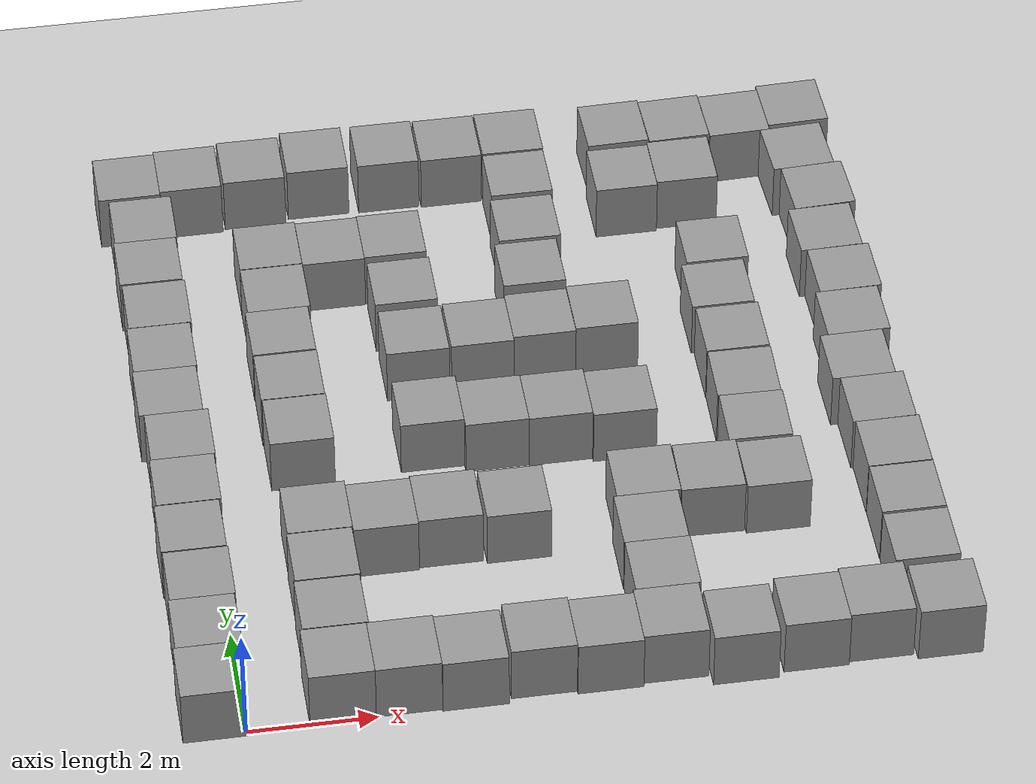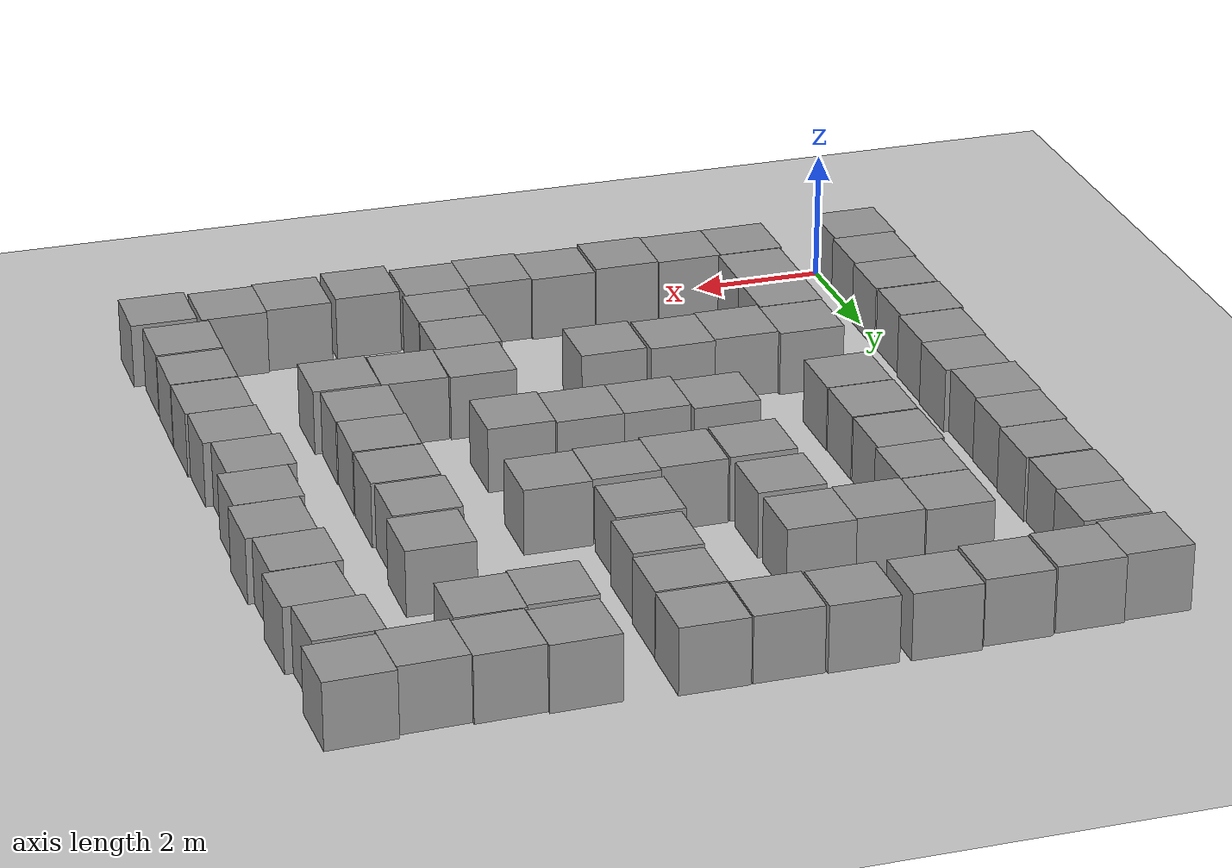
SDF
<sdf version="1.7">
 <world name="default">
  <light name="sun" type="directional">
   <pose>0 0 10 0 -0 0</pose>
   <diffuse>0.8 0.8 0.8 1</diffuse>
   <specular>0.2 0.2 0.2 1</specular>
   <attenuation>
    <range>1000</range>
    <constant>0.9</constant>
    <linear>0.01</linear>
    <quadratic>0.001</quadratic>
   </attenuation>
   <direction>-0.5 0.1 -0.9</direction>
   <spot><inner_angle>0</inner_angle><outer_angle>0</outer_angle><falloff>0</falloff></spot>
  </light>
  <model name="ground_plane">
   <static>1</static>
   <link name="link">
    <collision name="collision">
     <geometry><plane><normal>0 0 1</normal><size>100 100</size></plane></geometry>
     <surface>
      <contact><collide_bitmask>65535</collide_bitmask></contact>
      <friction><ode><mu>100</mu><mu2>50</mu2></ode></friction>
     </surface>
    </collision>
    <visual name="visual">
     <cast_shadows>0</cast_shadows>
     <geometry><plane><normal>0 0 1</normal><size>100 100</size></plane></geometry>
     <material>
      <script><uri>file://media/materials/scripts/gazebo.material</uri><name>Gazebo/Grey</name></script>
     </material>
    </visual>
   </link>
  </model>
  <gravity>0 0 -9.8</gravity>
  <magnetic_field>6e-06 2.3e-05 -4.2e-05</magnetic_field>
  <atmosphere type="adiabatic"/>
  <physics type="ode">
   <max_step_size>0.001</max_step_size>
   <real_time_factor>1</real_time_factor>
   <real_time_update_rate>1000</real_time_update_rate>
  </physics>
  <scene><ambient>0.4 0.4 0.4 1</ambient><background>0.7 0.7 0.7 1</background><shadows>1</shadows></scene>
  <audio><device>default</device></audio>
  <spherical_coordinates>
   <surface_model>EARTH_WGS84</surface_model>
   <latitude_deg>0</latitude_deg>
   <longitude_deg>0</longitude_deg>
   <elevation>0</elevation>
   <heading_deg>0</heading_deg>
  </spherical_coordinates>
  <model name="unit_box">
   <pose>-0.452482 0.421147 0.499995 -1e-05 -0 -0.000161</pose>
   <link name="link">
    <inertial>
     <mass>1</mass>
     <inertia>
      <ixx>0.166667</ixx>
      <ixy>0</ixy>
      <ixz>0</ixz>
      <iyy>0.166667</iyy>
      <iyz>0</iyz>
      <izz>0.166667</izz>
     </inertia>
    </inertial>
    <collision name="collision"><geometry><box><size>1 1 1</size></box></geometry></collision>
    <visual name="visual">
     <geometry><box><size>1 1 1</size></box></geometry>
     <material>
      <script><name>Gazebo/Grey</name><uri>file://media/materials/scripts/gazebo.material</uri></script>
     </material>
    </visual>
   </link>
  </model>
  <model name="unit_box_clone">
   <pose>-0.416464 1.42149 0.499995 0 1e-05 -0.00087</pose>
   <link name="link">
    <inertial>
     <mass>1</mass>
     <inertia>
      <ixx>0.166667</ixx>
      <ixy>0</ixy>
      <ixz>0</ixz>
      <iyy>0.166667</iyy>
      <iyz>0</iyz>
      <izz>0.166667</izz>
     </inertia>
    </inertial>
    <collision name="collision"><geometry><box><size>1 1 1</size></box></geometry></collision>
    <visual name="visual">
     <geometry><box><size>1 1 1</size></box></geometry>
     <material>
      <script><name>Gazebo/Grey</name><uri>file://media/materials/scripts/gazebo.material</uri></script>
     </material>
    </visual>
   </link>
  </model>
  <model name="unit_box_clone_0">
   <pose>-0.394844 2.42159 0.499995 1e-05 0 -0.000969</pose>
   <link name="link">
    <inertial>
     <mass>1</mass>
     <inertia>
      <ixx>0.166667</ixx>
      <ixy>0</ixy>
      <ixz>0</ixz>
      <iyy>0.166667</iyy>
      <iyz>0</iyz>
      <izz>0.166667</izz>
     </inertia>
    </inertial>
    <collision name="collision"><geometry><box><size>1 1 1</size></box></geometry></collision>
    <visual name="visual">
     <geometry><box><size>1 1 1</size></box></geometry>
     <material>
      <script><name>Gazebo/Grey</name><uri>file://media/materials/scripts/gazebo.material</uri></script>
     </material>
    </visual>
   </link>
  </model>
  <model name="unit_box_clone_1">
   <pose>-0.412073 3.43962 0.499995 -1e-05 -0 -0.000161</pose>
   <link name="link">
    <inertial>
     <mass>1</mass>
     <inertia>
      <ixx>0.166667</ixx>
      <ixy>0</ixy>
      <ixz>0</ixz>
      <iyy>0.166667</iyy>
      <iyz>0</iyz>
      <izz>0.166667</izz>
     </inertia>
    </inertial>
    <collision name="collision"><geometry><box><size>1 1 1</size></box></geometry></collision>
    <visual name="visual">
     <geometry><box><size>1 1 1</size></box></geometry>
     <material>
      <script><name>Gazebo/Grey</name><uri>file://media/materials/scripts/gazebo.material</uri></script>
     </material>
    </visual>
   </link>
  </model>
  <model name="unit_box_clone_2">
   <pose>-0.375795 4.44922 0.499995 0 -1e-05 -7e-06</pose>
   <link name="link">
    <inertial>
     <mass>1</mass>
     <inertia>
      <ixx>0.166667</ixx>
      <ixy>0</ixy>
      <ixz>0</ixz>
      <iyy>0.166667</iyy>
      <iyz>0</iyz>
      <izz>0.166667</izz>
     </inertia>
    </inertial>
    <collision name="collision"><geometry><box><size>1 1 1</size></box></geometry></collision>
    <visual name="visual">
     <geometry><box><size>1 1 1</size></box></geometry>
     <material>
      <script><name>Gazebo/Grey</name><uri>file://media/materials/scripts/gazebo.material</uri></script>
     </material>
    </visual>
   </link>
  </model>
  <model name="unit_box_clone_3">
   <pose>-0.353201 5.44926 0.499995 -1e-05 -0 2e-06</pose>
   <link name="link">
    <inertial>
     <mass>1</mass>
     <inertia>
      <ixx>0.166667</ixx>
      <ixy>0</ixy>
      <ixz>0</ixz>
      <iyy>0.166667</iyy>
      <iyz>0</iyz>
      <izz>0.166667</izz>
     </inertia>
    </inertial>
    <collision name="collision"><geometry><box><size>1 1 1</size></box></geometry></collision>
    <visual name="visual">
     <geometry><box><size>1 1 1</size></box></geometry>
     <material>
      <script><name>Gazebo/Grey</name><uri>file://media/materials/scripts/gazebo.material</uri></script>
     </material>
    </visual>
   </link>
  </model>
  <model name="unit_box_clone_4">
   <pose>1.45759 0.504589 0.5 0 0 -0.001251</pose>
   <link name="link">
    <inertial>
     <mass>1</mass>
     <inertia>
      <ixx>0.166667</ixx>
      <ixy>0</ixy>
      <ixz>0</ixz>
      <iyy>0.166667</iyy>
      <iyz>0</iyz>
      <izz>0.166667</izz>
     </inertia>
    </inertial>
    <collision name="collision"><geometry><box><size>1 1 1</size></box></geometry></collision>
    <visual name="visual">
     <geometry><box><size>1 1 1</size></box></geometry>
     <material>
      <script><name>Gazebo/Grey</name><uri>file://media/materials/scripts/gazebo.material</uri></script>
     </material>
    </visual>
   </link>
  </model>
  <model name="unit_box_clone_5">
   <pose>1.49382 1.51707 0.499995 1e-05 -0 -0.000161</pose>
   <link name="link">
    <inertial>
     <mass>1</mass>
     <inertia>
      <ixx>0.166667</ixx>
      <ixy>0</ixy>
      <ixz>0</ixz>
      <iyy>0.166667</iyy>
      <iyz>0</iyz>
      <izz>0.166667</izz>
     </inertia>
    </inertial>
    <collision name="collision"><geometry><box><size>1 1 1</size></box></geometry></collision>
    <visual name="visual">
     <geometry><box><size>1 1 1</size></box></geometry>
     <material>
      <script><name>Gazebo/Grey</name><uri>file://media/materials/scripts/gazebo.material</uri></script>
     </material>
    </visual>
   </link>
  </model>
  <model name="unit_box_clone_6">
   <pose>1.51175 2.53296 0.499995 0 -1e-05 -0.000161</pose>
   <link name="link">
    <inertial>
     <mass>1</mass>
     <inertia>
      <ixx>0.166667</ixx>
      <ixy>0</ixy>
      <ixz>0</ixz>
      <iyy>0.166667</iyy>
      <iyz>0</iyz>
      <izz>0.166667</izz>
     </inertia>
    </inertial>
    <collision name="collision"><geometry><box><size>1 1 1</size></box></geometry></collision>
    <visual name="visual">
     <geometry><box><size>1 1 1</size></box></geometry>
     <material>
      <script><name>Gazebo/Grey</name><uri>file://media/materials/scripts/gazebo.material</uri></script>
     </material>
    </visual>
   </link>
  </model>
  <model name="unit_box_clone_7">
   <pose>1.5258 3.54121 0.499995 0 -9e-06 -0.002041</pose>
   <link name="link">
    <inertial>
     <mass>1</mass>
     <inertia>
      <ixx>0.166667</ixx>
      <ixy>0</ixy>
      <ixz>0</ixz>
      <iyy>0.166667</iyy>
      <iyz>0</iyz>
      <izz>0.166667</izz>
     </inertia>
    </inertial>
    <collision name="collision"><geometry><box><size>1 1 1</size></box></geometry></collision>
    <visual name="visual">
     <geometry><box><size>1 1 1</size></box></geometry>
     <material>
      <script><name>Gazebo/Grey</name><uri>file://media/materials/scripts/gazebo.material</uri></script>
     </material>
    </visual>
   </link>
  </model>
  <model name="unit_box_clone_8">
   <pose>-0.432042 6.44927 0.499995 9e-06 -0 -8e-06</pose>
   <link name="link">
    <inertial>
     <mass>1</mass>
     <inertia>
      <ixx>0.166667</ixx>
      <ixy>0</ixy>
      <ixz>0</ixz>
      <iyy>0.166667</iyy>
      <iyz>0</iyz>
      <izz>0.166667</izz>
     </inertia>
    </inertial>
    <collision name="collision"><geometry><box><size>1 1 1</size></box></geometry></collision>
    <visual name="visual">
     <geometry><box><size>1 1 1</size></box></geometry>
     <material>
      <script><name>Gazebo/Grey</name><uri>file://media/materials/scripts/gazebo.material</uri></script>
     </material>
    </visual>
   </link>
  </model>
  <model name="unit_box_clone_9">
   <pose>-0.415056 7.44933 0.499995 -1e-05 -0 -0.000103</pose>
   <link name="link">
    <inertial>
     <mass>1</mass>
     <inertia>
      <ixx>0.166667</ixx>
      <ixy>0</ixy>
      <ixz>0</ixz>
      <iyy>0.166667</iyy>
      <iyz>0</iyz>
      <izz>0.166667</izz>
     </inertia>
    </inertial>
    <collision name="collision"><geometry><box><size>1 1 1</size></box></geometry></collision>
    <visual name="visual">
     <geometry><box><size>1 1 1</size></box></geometry>
     <material>
      <script><name>Gazebo/Grey</name><uri>file://media/materials/scripts/gazebo.material</uri></script>
     </material>
    </visual>
   </link>
  </model>
  <model name="unit_box_clone_10">
   <pose>-0.38869 8.45349 0.499995 0 1e-05 -0.000161</pose>
   <link name="link">
    <inertial>
     <mass>1</mass>
     <inertia>
      <ixx>0.166667</ixx>
      <ixy>0</ixy>
      <ixz>0</ixz>
      <iyy>0.166667</iyy>
      <iyz>0</iyz>
      <izz>0.166667</izz>
     </inertia>
    </inertial>
    <collision name="collision"><geometry><box><size>1 1 1</size></box></geometry></collision>
    <visual name="visual">
     <geometry><box><size>1 1 1</size></box></geometry>
     <material>
      <script><name>Gazebo/Grey</name><uri>file://media/materials/scripts/gazebo.material</uri></script>
     </material>
    </visual>
   </link>
  </model>
  <model name="unit_box_clone_11">
   <pose>1.49548 5.50133 0.499995 -1e-05 -0 -0.000161</pose>
   <link name="link">
    <inertial>
     <mass>1</mass>
     <inertia>
      <ixx>0.166667</ixx>
      <ixy>0</ixy>
      <ixz>0</ixz>
      <iyy>0.166667</iyy>
      <iyz>0</iyz>
      <izz>0.166667</izz>
     </inertia>
    </inertial>
    <collision name="collision"><geometry><box><size>1 1 1</size></box></geometry></collision>
    <visual name="visual">
     <geometry><box><size>1 1 1</size></box></geometry>
     <material>
      <script><name>Gazebo/Grey</name><uri>file://media/materials/scripts/gazebo.material</uri></script>
     </material>
    </visual>
   </link>
  </model>
  <model name="unit_box_clone_12">
   <pose>1.48213 6.51055 0.499995 0 -1e-05 -0.000161</pose>
   <link name="link">
    <inertial>
     <mass>1</mass>
     <inertia>
      <ixx>0.166667</ixx>
      <ixy>0</ixy>
      <ixz>0</ixz>
      <iyy>0.166667</iyy>
      <iyz>0</iyz>
      <izz>0.166667</izz>
     </inertia>
    </inertial>
    <collision name="collision"><geometry><box><size>1 1 1</size></box></geometry></collision>
    <visual name="visual">
     <geometry><box><size>1 1 1</size></box></geometry>
     <material>
      <script><name>Gazebo/Grey</name><uri>file://media/materials/scripts/gazebo.material</uri></script>
     </material>
    </visual>
   </link>
  </model>
  <model name="unit_box_clone_13">
   <pose>1.47399 7.5353 0.499995 -1e-05 0 0.003564</pose>
   <link name="link">
    <inertial>
     <mass>1</mass>
     <inertia>
      <ixx>0.166667</ixx>
      <ixy>0</ixy>
      <ixz>0</ixz>
      <iyy>0.166667</iyy>
      <iyz>0</iyz>
      <izz>0.166667</izz>
     </inertia>
    </inertial>
    <collision name="collision"><geometry><box><size>1 1 1</size></box></geometry></collision>
    <visual name="visual">
     <geometry><box><size>1 1 1</size></box></geometry>
     <material>
      <script><name>Gazebo/Grey</name><uri>file://media/materials/scripts/gazebo.material</uri></script>
     </material>
    </visual>
   </link>
  </model>
  <model name="unit_box_clone_14">
   <pose>1.51143 8.53594 0.499995 -0 -1e-05 0.004544</pose>
   <link name="link">
    <inertial>
     <mass>1</mass>
     <inertia>
      <ixx>0.166667</ixx>
      <ixy>0</ixy>
      <ixz>0</ixz>
      <iyy>0.166667</iyy>
      <iyz>0</iyz>
      <izz>0.166667</izz>
     </inertia>
    </inertial>
    <collision name="collision"><geometry><box><size>1 1 1</size></box></geometry></collision>
    <visual name="visual">
     <geometry><box><size>1 1 1</size></box></geometry>
     <material>
      <script><name>Gazebo/Grey</name><uri>file://media/materials/scripts/gazebo.material</uri></script>
     </material>
    </visual>
   </link>
  </model>
  <model name="unit_box_clone_15">
   <pose>1.50842 9.54393 0.499995 -1e-05 -0 0.001021</pose>
   <link name="link">
    <inertial>
     <mass>1</mass>
     <inertia>
      <ixx>0.166667</ixx>
      <ixy>0</ixy>
      <ixz>0</ixz>
      <iyy>0.166667</iyy>
      <iyz>0</iyz>
      <izz>0.166667</izz>
     </inertia>
    </inertial>
    <collision name="collision"><geometry><box><size>1 1 1</size></box></geometry></collision>
    <visual name="visual">
     <geometry><box><size>1 1 1</size></box></geometry>
     <material>
      <script><name>Gazebo/Grey</name><uri>file://media/materials/scripts/gazebo.material</uri></script>
     </material>
    </visual>
   </link>
  </model>
  <model name="unit_box_clone_16">
   <pose>-0.419297 9.47967 0.499995 -1e-05 0 -0.000337</pose>
   <link name="link">
    <inertial>
     <mass>1</mass>
     <inertia>
      <ixx>0.166667</ixx>
      <ixy>0</ixy>
      <ixz>0</ixz>
      <iyy>0.166667</iyy>
      <iyz>0</iyz>
      <izz>0.166667</izz>
     </inertia>
    </inertial>
    <collision name="collision"><geometry><box><size>1 1 1</size></box></geometry></collision>
    <visual name="visual">
     <geometry><box><size>1 1 1</size></box></geometry>
     <material>
      <script><name>Gazebo/Grey</name><uri>file://media/materials/scripts/gazebo.material</uri></script>
     </material>
    </visual>
   </link>
  </model>
  <model name="unit_box_clone_17">
   <pose>-0.397226 10.4797 0.499995 1e-05 0 -0.000329</pose>
   <link name="link">
    <inertial>
     <mass>1</mass>
     <inertia>
      <ixx>0.166667</ixx>
      <ixy>0</ixy>
      <ixz>0</ixz>
      <iyy>0.166667</iyy>
      <iyz>0</iyz>
      <izz>0.166667</izz>
     </inertia>
    </inertial>
    <collision name="collision"><geometry><box><size>1 1 1</size></box></geometry></collision>
    <visual name="visual">
     <geometry><box><size>1 1 1</size></box></geometry>
     <material>
      <script><name>Gazebo/Grey</name><uri>file://media/materials/scripts/gazebo.material</uri></script>
     </material>
    </visual>
   </link>
  </model>
  <model name="unit_box_clone_18">
   <pose>-0.559015 11.533 0.499995 1e-05 -0 0.004638</pose>
   <link name="link">
    <inertial>
     <mass>1</mass>
     <inertia>
      <ixx>0.166667</ixx>
      <ixy>0</ixy>
      <ixz>0</ixz>
      <iyy>0.166667</iyy>
      <iyz>0</iyz>
      <izz>0.166667</izz>
     </inertia>
    </inertial>
    <collision name="collision"><geometry><box><size>1 1 1</size></box></geometry></collision>
    <visual name="visual">
     <geometry><box><size>1 1 1</size></box></geometry>
     <material>
      <script><name>Gazebo/Grey</name><uri>file://media/materials/scripts/gazebo.material</uri></script>
     </material>
    </visual>
   </link>
  </model>
  <model name="unit_box_clone_19">
   <pose>0.440722 11.5938 0.499995 -1e-05 -0 0.004635</pose>
   <link name="link">
    <inertial>
     <mass>1</mass>
     <inertia>
      <ixx>0.166667</ixx>
      <ixy>0</ixy>
      <ixz>0</ixz>
      <iyy>0.166667</iyy>
      <iyz>0</iyz>
      <izz>0.166667</izz>
     </inertia>
    </inertial>
    <collision name="collision"><geometry><box><size>1 1 1</size></box></geometry></collision>
    <visual name="visual">
     <geometry><box><size>1 1 1</size></box></geometry>
     <material>
      <script><name>Gazebo/Grey</name><uri>file://media/materials/scripts/gazebo.material</uri></script>
     </material>
    </visual>
   </link>
  </model>
  <model name="unit_box_clone_20">
   <pose>1.48342 11.6484 0.499995 1e-05 -0 -0.000161</pose>
   <link name="link">
    <inertial>
     <mass>1</mass>
     <inertia>
      <ixx>0.166667</ixx>
      <ixy>0</ixy>
      <ixz>0</ixz>
      <iyy>0.166667</iyy>
      <iyz>0</iyz>
      <izz>0.166667</izz>
     </inertia>
    </inertial>
    <collision name="collision"><geometry><box><size>1 1 1</size></box></geometry></collision>
    <visual name="visual">
     <geometry><box><size>1 1 1</size></box></geometry>
     <material>
      <script><name>Gazebo/Grey</name><uri>file://media/materials/scripts/gazebo.material</uri></script>
     </material>
    </visual>
   </link>
  </model>
  <model name="unit_box_clone_21">
   <pose>2.50914 9.50085 0.499995 -0 -1e-05 0.000777</pose>
   <link name="link">
    <inertial>
     <mass>1</mass>
     <inertia>
      <ixx>0.166667</ixx>
      <ixy>0</ixy>
      <ixz>0</ixz>
      <iyy>0.166667</iyy>
      <iyz>0</iyz>
      <izz>0.166667</izz>
     </inertia>
    </inertial>
    <collision name="collision"><geometry><box><size>1 1 1</size></box></geometry></collision>
    <visual name="visual">
     <geometry><box><size>1 1 1</size></box></geometry>
     <material>
      <script><name>Gazebo/Grey</name><uri>file://media/materials/scripts/gazebo.material</uri></script>
     </material>
    </visual>
   </link>
  </model>
  <model name="unit_box_clone_22">
   <pose>2.53315 11.7353 0.499995 -1e-05 -0 -0.000161</pose>
   <link name="link">
    <inertial>
     <mass>1</mass>
     <inertia>
      <ixx>0.166667</ixx>
      <ixy>0</ixy>
      <ixz>0</ixz>
      <iyy>0.166667</iyy>
      <iyz>0</iyz>
      <izz>0.166667</izz>
     </inertia>
    </inertial>
    <collision name="collision"><geometry><box><size>1 1 1</size></box></geometry></collision>
    <visual name="visual">
     <geometry><box><size>1 1 1</size></box></geometry>
     <material>
      <script><name>Gazebo/Grey</name><uri>file://media/materials/scripts/gazebo.material</uri></script>
     </material>
    </visual>
   </link>
  </model>
  <model name="unit_box_clone_23">
   <pose>3.50926 9.52379 0.499995 -1e-05 -0 0.000774</pose>
   <link name="link">
    <inertial>
     <mass>1</mass>
     <inertia>
      <ixx>0.166667</ixx>
      <ixy>0</ixy>
      <ixz>0</ixz>
      <iyy>0.166667</iyy>
      <iyz>0</iyz>
      <izz>0.166667</izz>
     </inertia>
    </inertial>
    <collision name="collision"><geometry><box><size>1 1 1</size></box></geometry></collision>
    <visual name="visual">
     <geometry><box><size>1 1 1</size></box></geometry>
     <material>
      <script><name>Gazebo/Grey</name><uri>file://media/materials/scripts/gazebo.material</uri></script>
     </material>
    </visual>
   </link>
  </model>
  <model name="unit_box_clone_24">
   <pose>3.69298 11.7204 0.499995 0 -1e-05 -0.000161</pose>
   <link name="link">
    <inertial>
     <mass>1</mass>
     <inertia>
      <ixx>0.166667</ixx>
      <ixy>0</ixy>
      <ixz>0</ixz>
      <iyy>0.166667</iyy>
      <iyz>0</iyz>
      <izz>0.166667</izz>
     </inertia>
    </inertial>
    <collision name="collision"><geometry><box><size>1 1 1</size></box></geometry></collision>
    <visual name="visual">
     <geometry><box><size>1 1 1</size></box></geometry>
     <material>
      <script><name>Gazebo/Grey</name><uri>file://media/materials/scripts/gazebo.material</uri></script>
     </material>
    </visual>
   </link>
  </model>
  <model name="unit_box_clone_25">
   <pose>4.72694 11.6972 0.499995 -1e-05 -0 -0.000161</pose>
   <link name="link">
    <inertial>
     <mass>1</mass>
     <inertia>
      <ixx>0.166667</ixx>
      <ixy>0</ixy>
      <ixz>0</ixz>
      <iyy>0.166667</iyy>
      <iyz>0</iyz>
      <izz>0.166667</izz>
     </inertia>
    </inertial>
    <collision name="collision"><geometry><box><size>1 1 1</size></box></geometry></collision>
    <visual name="visual">
     <geometry><box><size>1 1 1</size></box></geometry>
     <material>
      <script><name>Gazebo/Grey</name><uri>file://media/materials/scripts/gazebo.material</uri></script>
     </material>
    </visual>
   </link>
  </model>
  <model name="unit_box_clone_26">
   <pose>5.7484 11.7105 0.499995 0 1e-05 -0.000161</pose>
   <link name="link">
    <inertial>
     <mass>1</mass>
     <inertia>
      <ixx>0.166667</ixx>
      <ixy>0</ixy>
      <ixz>0</ixz>
      <iyy>0.166667</iyy>
      <iyz>0</iyz>
      <izz>0.166667</izz>
     </inertia>
    </inertial>
    <collision name="collision"><geometry><box><size>1 1 1</size></box></geometry></collision>
    <visual name="visual">
     <geometry><box><size>1 1 1</size></box></geometry>
     <material>
      <script><name>Gazebo/Grey</name><uri>file://media/materials/scripts/gazebo.material</uri></script>
     </material>
    </visual>
   </link>
  </model>
  <model name="unit_box_clone_27">
   <pose>5.7396 10.6749 0.499995 -1e-05 -0 -0.000161</pose>
   <link name="link">
    <inertial>
     <mass>1</mass>
     <inertia>
      <ixx>0.166667</ixx>
      <ixy>0</ixy>
      <ixz>0</ixz>
      <iyy>0.166667</iyy>
      <iyz>0</iyz>
      <izz>0.166667</izz>
     </inertia>
    </inertial>
    <collision name="collision"><geometry><box><size>1 1 1</size></box></geometry></collision>
    <visual name="visual">
     <geometry><box><size>1 1 1</size></box></geometry>
     <material>
      <script><name>Gazebo/Grey</name><uri>file://media/materials/scripts/gazebo.material</uri></script>
     </material>
    </visual>
   </link>
  </model>
  <model name="unit_box_clone_28">
   <pose>5.70102 9.57812 0.499995 -1e-05 -0 -0.000161</pose>
   <link name="link">
    <inertial>
     <mass>1</mass>
     <inertia>
      <ixx>0.166667</ixx>
      <ixy>0</ixy>
      <ixz>0</ixz>
      <iyy>0.166667</iyy>
      <iyz>0</iyz>
      <izz>0.166667</izz>
     </inertia>
    </inertial>
    <collision name="collision"><geometry><box><size>1 1 1</size></box></geometry></collision>
    <visual name="visual">
     <geometry><box><size>1 1 1</size></box></geometry>
     <material>
      <script><name>Gazebo/Grey</name><uri>file://media/materials/scripts/gazebo.material</uri></script>
     </material>
    </visual>
   </link>
  </model>
  <model name="unit_box_clone_29">
   <pose>5.61125 8.5142 0.499995 0 1e-05 -0.000161</pose>
   <link name="link">
    <inertial>
     <mass>1</mass>
     <inertia>
      <ixx>0.166667</ixx>
      <ixy>0</ixy>
      <ixz>0</ixz>
      <iyy>0.166667</iyy>
      <iyz>0</iyz>
      <izz>0.166667</izz>
     </inertia>
    </inertial>
    <collision name="collision"><geometry><box><size>1 1 1</size></box></geometry></collision>
    <visual name="visual">
     <geometry><box><size>1 1 1</size></box></geometry>
     <material>
      <script><name>Gazebo/Grey</name><uri>file://media/materials/scripts/gazebo.material</uri></script>
     </material>
    </visual>
   </link>
  </model>
  <model name="unit_box_clone_30">
   <pose>3.52957 8.38778 0.499995 1e-05 -0 -0.000161</pose>
   <link name="link">
    <inertial>
     <mass>1</mass>
     <inertia>
      <ixx>0.166667</ixx>
      <ixy>0</ixy>
      <ixz>0</ixz>
      <iyy>0.166667</iyy>
      <iyz>0</iyz>
      <izz>0.166667</izz>
     </inertia>
    </inertial>
    <collision name="collision"><geometry><box><size>1 1 1</size></box></geometry></collision>
    <visual name="visual">
     <geometry><box><size>1 1 1</size></box></geometry>
     <material>
      <script><name>Gazebo/Grey</name><uri>file://media/materials/scripts/gazebo.material</uri></script>
     </material>
    </visual>
   </link>
  </model>
  <model name="unit_box_clone_31">
   <pose>3.55056 7.2285 0.499995 0 1e-05 -0.000161</pose>
   <link name="link">
    <inertial>
     <mass>1</mass>
     <inertia>
      <ixx>0.166667</ixx>
      <ixy>0</ixy>
      <ixz>0</ixz>
      <iyy>0.166667</iyy>
      <iyz>0</iyz>
      <izz>0.166667</izz>
     </inertia>
    </inertial>
    <collision name="collision"><geometry><box><size>1 1 1</size></box></geometry></collision>
    <visual name="visual">
     <geometry><box><size>1 1 1</size></box></geometry>
     <material>
      <script><name>Gazebo/Grey</name><uri>file://media/materials/scripts/gazebo.material</uri></script>
     </material>
    </visual>
   </link>
  </model>
  <model name="unit_box_clone_32">
   <pose>4.58151 7.24804 0.499995 1e-05 0 0.000808</pose>
   <link name="link">
    <inertial>
     <mass>1</mass>
     <inertia>
      <ixx>0.166667</ixx>
      <ixy>0</ixy>
      <ixz>0</ixz>
      <iyy>0.166667</iyy>
      <iyz>0</iyz>
      <izz>0.166667</izz>
     </inertia>
    </inertial>
    <collision name="collision"><geometry><box><size>1 1 1</size></box></geometry></collision>
    <visual name="visual">
     <geometry><box><size>1 1 1</size></box></geometry>
     <material>
      <script><name>Gazebo/Grey</name><uri>file://media/materials/scripts/gazebo.material</uri></script>
     </material>
    </visual>
   </link>
  </model>
  <model name="unit_box_clone_33">
   <pose>5.58147 7.31354 0.499995 1e-05 -0 0.000807</pose>
   <link name="link">
    <inertial>
     <mass>1</mass>
     <inertia>
      <ixx>0.166667</ixx>
      <ixy>0</ixy>
      <ixz>0</ixz>
      <iyy>0.166667</iyy>
      <iyz>0</iyz>
      <izz>0.166667</izz>
     </inertia>
    </inertial>
    <collision name="collision"><geometry><box><size>1 1 1</size></box></geometry></collision>
    <visual name="visual">
     <geometry><box><size>1 1 1</size></box></geometry>
     <material>
      <script><name>Gazebo/Grey</name><uri>file://media/materials/scripts/gazebo.material</uri></script>
     </material>
    </visual>
   </link>
  </model>
  <model name="unit_box_clone_34">
   <pose>3.54307 5.59369 0.499995 1e-05 0 -0.000969</pose>
   <link name="link">
    <inertial>
     <mass>1</mass>
     <inertia>
      <ixx>0.166667</ixx>
      <ixy>0</ixy>
      <ixz>0</ixz>
      <iyy>0.166667</iyy>
      <iyz>0</iyz>
      <izz>0.166667</izz>
     </inertia>
    </inertial>
    <collision name="collision"><geometry><box><size>1 1 1</size></box></geometry></collision>
    <visual name="visual">
     <geometry><box><size>1 1 1</size></box></geometry>
     <material>
      <script><name>Gazebo/Grey</name><uri>file://media/materials/scripts/gazebo.material</uri></script>
     </material>
    </visual>
   </link>
  </model>
  <model name="unit_box_clone_35">
   <pose>4.54294 5.45355 0.499995 0 1e-05 -0.000973</pose>
   <link name="link">
    <inertial>
     <mass>1</mass>
     <inertia>
      <ixx>0.166667</ixx>
      <ixy>0</ixy>
      <ixz>0</ixz>
      <iyy>0.166667</iyy>
      <iyz>0</iyz>
      <izz>0.166667</izz>
     </inertia>
    </inertial>
    <collision name="collision"><geometry><box><size>1 1 1</size></box></geometry></collision>
    <visual name="visual">
     <geometry><box><size>1 1 1</size></box></geometry>
     <material>
      <script><name>Gazebo/Grey</name><uri>file://media/materials/scripts/gazebo.material</uri></script>
     </material>
    </visual>
   </link>
  </model>
  <model name="unit_box_clone_36">
   <pose>5.54299 5.44285 0.499995 0 1e-05 -0.00097</pose>
   <link name="link">
    <inertial>
     <mass>1</mass>
     <inertia>
      <ixx>0.166667</ixx>
      <ixy>0</ixy>
      <ixz>0</ixz>
      <iyy>0.166667</iyy>
      <iyz>0</iyz>
      <izz>0.166667</izz>
     </inertia>
    </inertial>
    <collision name="collision"><geometry><box><size>1 1 1</size></box></geometry></collision>
    <visual name="visual">
     <geometry><box><size>1 1 1</size></box></geometry>
     <material>
      <script><name>Gazebo/Grey</name><uri>file://media/materials/scripts/gazebo.material</uri></script>
     </material>
    </visual>
   </link>
  </model>
  <model name="unit_box_clone_37">
   <pose>6.54292 5.37406 0.499995 -0 1e-05 -0.000971</pose>
   <link name="link">
    <inertial>
     <mass>1</mass>
     <inertia>
      <ixx>0.166667</ixx>
      <ixy>0</ixy>
      <ixz>0</ixz>
      <iyy>0.166667</iyy>
      <iyz>0</iyz>
      <izz>0.166667</izz>
     </inertia>
    </inertial>
    <collision name="collision"><geometry><box><size>1 1 1</size></box></geometry></collision>
    <visual name="visual">
     <geometry><box><size>1 1 1</size></box></geometry>
     <material>
      <script><name>Gazebo/Grey</name><uri>file://media/materials/scripts/gazebo.material</uri></script>
     </material>
    </visual>
   </link>
  </model>
  <model name="unit_box_clone_38">
   <pose>6.58622 7.35719 0.499995 0 -1e-05 -0.000161</pose>
   <link name="link">
    <inertial>
     <mass>1</mass>
     <inertia>
      <ixx>0.166667</ixx>
      <ixy>0</ixy>
      <ixz>0</ixz>
      <iyy>0.166667</iyy>
      <iyz>0</iyz>
      <izz>0.166667</izz>
     </inertia>
    </inertial>
    <collision name="collision"><geometry><box><size>1 1 1</size></box></geometry></collision>
    <visual name="visual">
     <geometry><box><size>1 1 1</size></box></geometry>
     <material>
      <script><name>Gazebo/Grey</name><uri>file://media/materials/scripts/gazebo.material</uri></script>
     </material>
    </visual>
   </link>
  </model>
  <model name="unit_box_clone_39">
   <pose>2.52562 3.44734 0.499995 0 1e-05 -0.002047</pose>
   <link name="link">
    <inertial>
     <mass>1</mass>
     <inertia>
      <ixx>0.166667</ixx>
      <ixy>0</ixy>
      <ixz>0</ixz>
      <iyy>0.166667</iyy>
      <iyz>0</iyz>
      <izz>0.166667</izz>
     </inertia>
    </inertial>
    <collision name="collision"><geometry><box><size>1 1 1</size></box></geometry></collision>
    <visual name="visual">
     <geometry><box><size>1 1 1</size></box></geometry>
     <material>
      <script><name>Gazebo/Grey</name><uri>file://media/materials/scripts/gazebo.material</uri></script>
     </material>
    </visual>
   </link>
  </model>
  <model name="unit_box_clone_40">
   <pose>3.52589 3.48638 0.499995 -1e-05 -0 -0.002115</pose>
   <link name="link">
    <inertial>
     <mass>1</mass>
     <inertia>
      <ixx>0.166667</ixx>
      <ixy>0</ixy>
      <ixz>0</ixz>
      <iyy>0.166667</iyy>
      <iyz>0</iyz>
      <izz>0.166667</izz>
     </inertia>
    </inertial>
    <collision name="collision"><geometry><box><size>1 1 1</size></box></geometry></collision>
    <visual name="visual">
     <geometry><box><size>1 1 1</size></box></geometry>
     <material>
      <script><name>Gazebo/Grey</name><uri>file://media/materials/scripts/gazebo.material</uri></script>
     </material>
    </visual>
   </link>
  </model>
  <model name="unit_box_clone_41">
   <pose>4.57059 3.42112 0.499995 -1e-05 -0 -0.000161</pose>
   <link name="link">
    <inertial>
     <mass>1</mass>
     <inertia>
      <ixx>0.166667</ixx>
      <ixy>0</ixy>
      <ixz>0</ixz>
      <iyy>0.166667</iyy>
      <iyz>0</iyz>
      <izz>0.166667</izz>
     </inertia>
    </inertial>
    <collision name="collision"><geometry><box><size>1 1 1</size></box></geometry></collision>
    <visual name="visual">
     <geometry><box><size>1 1 1</size></box></geometry>
     <material>
      <script><name>Gazebo/Grey</name><uri>file://media/materials/scripts/gazebo.material</uri></script>
     </material>
    </visual>
   </link>
  </model>
  <model name="unit_box_clone_43">
   <pose>6.60127 3.5675 0.499995 1e-05 0 -0.005837</pose>
   <link name="link">
    <inertial>
     <mass>1</mass>
     <inertia>
      <ixx>0.166667</ixx>
      <ixy>0</ixy>
      <ixz>0</ixz>
      <iyy>0.166667</iyy>
      <iyz>0</iyz>
      <izz>0.166667</izz>
     </inertia>
    </inertial>
    <collision name="collision"><geometry><box><size>1 1 1</size></box></geometry></collision>
    <visual name="visual">
     <geometry><box><size>1 1 1</size></box></geometry>
     <material>
      <script><name>Gazebo/Grey</name><uri>file://media/materials/scripts/gazebo.material</uri></script>
     </material>
    </visual>
   </link>
  </model>
  <model name="unit_box_clone_44">
   <pose>7.60933 3.52577 0.499995 1e-05 -0 -0.020654</pose>
   <link name="link">
    <inertial>
     <mass>1</mass>
     <inertia>
      <ixx>0.166667</ixx>
      <ixy>0</ixy>
      <ixz>0</ixz>
      <iyy>0.166667</iyy>
      <iyz>0</iyz>
      <izz>0.166667</izz>
     </inertia>
    </inertial>
    <collision name="collision"><geometry><box><size>1 1 1</size></box></geometry></collision>
    <visual name="visual">
     <geometry><box><size>1 1 1</size></box></geometry>
     <material>
      <script><name>Gazebo/Grey</name><uri>file://media/materials/scripts/gazebo.material</uri></script>
     </material>
    </visual>
   </link>
  </model>
  <model name="unit_box_clone_45">
   <pose>8.61842 3.45269 0.499995 0 -1e-05 -0.003401</pose>
   <link name="link">
    <inertial>
     <mass>1</mass>
     <inertia>
      <ixx>0.166667</ixx>
      <ixy>0</ixy>
      <ixz>0</ixz>
      <iyy>0.166667</iyy>
      <iyz>0</iyz>
      <izz>0.166667</izz>
     </inertia>
    </inertial>
    <collision name="collision"><geometry><box><size>1 1 1</size></box></geometry></collision>
    <visual name="visual">
     <geometry><box><size>1 1 1</size></box></geometry>
     <material>
      <script><name>Gazebo/Grey</name><uri>file://media/materials/scripts/gazebo.material</uri></script>
     </material>
    </visual>
   </link>
  </model>
  <model name="unit_box_clone_46">
   <pose>8.53012 4.50786 0.499995 1e-05 0 -0.018883</pose>
   <link name="link">
    <inertial>
     <mass>1</mass>
     <inertia>
      <ixx>0.166667</ixx>
      <ixy>0</ixy>
      <ixz>0</ixz>
      <iyy>0.166667</iyy>
      <iyz>0</iyz>
      <izz>0.166667</izz>
     </inertia>
    </inertial>
    <collision name="collision"><geometry><box><size>1 1 1</size></box></geometry></collision>
    <visual name="visual">
     <geometry><box><size>1 1 1</size></box></geometry>
     <material>
      <script><name>Gazebo/Grey</name><uri>file://media/materials/scripts/gazebo.material</uri></script>
     </material>
    </visual>
   </link>
  </model>
  <model name="unit_box_clone_47">
   <pose>8.53047 5.50809 0.499995 0 1e-05 -0.01893</pose>
   <link name="link">
    <inertial>
     <mass>1</mass>
     <inertia>
      <ixx>0.166667</ixx>
      <ixy>0</ixy>
      <ixz>0</ixz>
      <iyy>0.166667</iyy>
      <iyz>0</iyz>
      <izz>0.166667</izz>
     </inertia>
    </inertial>
    <collision name="collision"><geometry><box><size>1 1 1</size></box></geometry></collision>
    <visual name="visual">
     <geometry><box><size>1 1 1</size></box></geometry>
     <material>
      <script><name>Gazebo/Grey</name><uri>file://media/materials/scripts/gazebo.material</uri></script>
     </material>
    </visual>
   </link>
  </model>
  <model name="unit_box_clone_48">
   <pose>8.53467 6.53514 0.499995 0 -1e-05 -0.000161</pose>
   <link name="link">
    <inertial>
     <mass>1</mass>
     <inertia>
      <ixx>0.166667</ixx>
      <ixy>0</ixy>
      <ixz>0</ixz>
      <iyy>0.166667</iyy>
      <iyz>0</iyz>
      <izz>0.166667</izz>
     </inertia>
    </inertial>
    <collision name="collision"><geometry><box><size>1 1 1</size></box></geometry></collision>
    <visual name="visual">
     <geometry><box><size>1 1 1</size></box></geometry>
     <material>
      <script><name>Gazebo/Grey</name><uri>file://media/materials/scripts/gazebo.material</uri></script>
     </material>
    </visual>
   </link>
  </model>
  <model name="unit_box_clone_49">
   <pose>8.4906 7.57146 0.499995 0 -1e-05 -0.000161</pose>
   <link name="link">
    <inertial>
     <mass>1</mass>
     <inertia>
      <ixx>0.166667</ixx>
      <ixy>0</ixy>
      <ixz>0</ixz>
      <iyy>0.166667</iyy>
      <iyz>0</iyz>
      <izz>0.166667</izz>
     </inertia>
    </inertial>
    <collision name="collision"><geometry><box><size>1 1 1</size></box></geometry></collision>
    <visual name="visual">
     <geometry><box><size>1 1 1</size></box></geometry>
     <material>
      <script><name>Gazebo/Grey</name><uri>file://media/materials/scripts/gazebo.material</uri></script>
     </material>
    </visual>
   </link>
  </model>
  <model name="unit_box_clone_50">
   <pose>8.58665 8.61263 0.499995 -1e-05 -0 -0.000161</pose>
   <link name="link">
    <inertial>
     <mass>1</mass>
     <inertia>
      <ixx>0.166667</ixx>
      <ixy>0</ixy>
      <ixz>0</ixz>
      <iyy>0.166667</iyy>
      <iyz>0</iyz>
      <izz>0.166667</izz>
     </inertia>
    </inertial>
    <collision name="collision"><geometry><box><size>1 1 1</size></box></geometry></collision>
    <visual name="visual">
     <geometry><box><size>1 1 1</size></box></geometry>
     <material>
      <script><name>Gazebo/Grey</name><uri>file://media/materials/scripts/gazebo.material</uri></script>
     </material>
    </visual>
   </link>
  </model>
  <model name="unit_box_clone_42">
   <pose>6.54479 2.56732 0.499995 0 -1e-05 -0.004884</pose>
   <link name="link">
    <inertial>
     <mass>1</mass>
     <inertia>
      <ixx>0.166667</ixx>
      <ixy>0</ixy>
      <ixz>0</ixz>
      <iyy>0.166667</iyy>
      <iyz>0</iyz>
      <izz>0.166667</izz>
     </inertia>
    </inertial>
    <collision name="collision"><geometry><box><size>1 1 1</size></box></geometry></collision>
    <visual name="visual">
     <geometry><box><size>1 1 1</size></box></geometry>
     <material>
      <script><name>Gazebo/Grey</name><uri>file://media/materials/scripts/gazebo.material</uri></script>
     </material>
    </visual>
   </link>
  </model>
  <model name="unit_box_clone_51">
   <pose>6.55047 1.56686 0.499995 0 -1e-05 -0.004045</pose>
   <link name="link">
    <inertial>
     <mass>1</mass>
     <inertia>
      <ixx>0.166667</ixx>
      <ixy>0</ixy>
      <ixz>0</ixz>
      <iyy>0.166667</iyy>
      <iyz>0</iyz>
      <izz>0.166667</izz>
     </inertia>
    </inertial>
    <collision name="collision"><geometry><box><size>1 1 1</size></box></geometry></collision>
    <visual name="visual">
     <geometry><box><size>1 1 1</size></box></geometry>
     <material>
      <script><name>Gazebo/Grey</name><uri>file://media/materials/scripts/gazebo.material</uri></script>
     </material>
    </visual>
   </link>
  </model>
  <model name="unit_box_clone_52">
   <pose>6.50469 0.56621 0.5 0 -0 -0.002525</pose>
   <link name="link">
    <inertial>
     <mass>1</mass>
     <inertia>
      <ixx>0.166667</ixx>
      <ixy>0</ixy>
      <ixz>0</ixz>
      <iyy>0.166667</iyy>
      <iyz>0</iyz>
      <izz>0.166667</izz>
     </inertia>
    </inertial>
    <collision name="collision"><geometry><box><size>1 1 1</size></box></geometry></collision>
    <visual name="visual">
     <geometry><box><size>1 1 1</size></box></geometry>
     <material>
      <script><name>Gazebo/Grey</name><uri>file://media/materials/scripts/gazebo.material</uri></script>
     </material>
    </visual>
   </link>
  </model>
  <model name="unit_box_clone_53">
   <pose>5.50447 0.503779 0.499995 -1e-05 -0 -0.002451</pose>
   <link name="link">
    <inertial>
     <mass>1</mass>
     <inertia>
      <ixx>0.166667</ixx>
      <ixy>0</ixy>
      <ixz>0</ixz>
      <iyy>0.166667</iyy>
      <iyz>0</iyz>
      <izz>0.166667</izz>
     </inertia>
    </inertial>
    <collision name="collision"><geometry><box><size>1 1 1</size></box></geometry></collision>
    <visual name="visual">
     <geometry><box><size>1 1 1</size></box></geometry>
     <material>
      <script><name>Gazebo/Grey</name><uri>file://media/materials/scripts/gazebo.material</uri></script>
     </material>
    </visual>
   </link>
  </model>
  <model name="unit_box_clone_54">
   <pose>4.50457 0.562445 0.499995 1e-05 0 -0.002428</pose>
   <link name="link">
    <inertial>
     <mass>1</mass>
     <inertia>
      <ixx>0.166667</ixx>
      <ixy>0</ixy>
      <ixz>0</ixz>
      <iyy>0.166667</iyy>
      <iyz>0</iyz>
      <izz>0.166667</izz>
     </inertia>
    </inertial>
    <collision name="collision"><geometry><box><size>1 1 1</size></box></geometry></collision>
    <visual name="visual">
     <geometry><box><size>1 1 1</size></box></geometry>
     <material>
      <script><name>Gazebo/Grey</name><uri>file://media/materials/scripts/gazebo.material</uri></script>
     </material>
    </visual>
   </link>
  </model>
  <model name="unit_box_clone_55">
   <pose>3.4576 0.467946 0.499995 0 1e-05 -0.001246</pose>
   <link name="link">
    <inertial>
     <mass>1</mass>
     <inertia>
      <ixx>0.166667</ixx>
      <ixy>0</ixy>
      <ixz>0</ixz>
      <iyy>0.166667</iyy>
      <iyz>0</iyz>
      <izz>0.166667</izz>
     </inertia>
    </inertial>
    <collision name="collision"><geometry><box><size>1 1 1</size></box></geometry></collision>
    <visual name="visual">
     <geometry><box><size>1 1 1</size></box></geometry>
     <material>
      <script><name>Gazebo/Grey</name><uri>file://media/materials/scripts/gazebo.material</uri></script>
     </material>
    </visual>
   </link>
  </model>
  <model name="unit_box_clone_56">
   <pose>2.45761 0.503227 0.499995 1e-05 0 -0.001248</pose>
   <link name="link">
    <inertial>
     <mass>1</mass>
     <inertia>
      <ixx>0.166667</ixx>
      <ixy>0</ixy>
      <ixz>0</ixz>
      <iyy>0.166667</iyy>
      <iyz>0</iyz>
      <izz>0.166667</izz>
     </inertia>
    </inertial>
    <collision name="collision"><geometry><box><size>1 1 1</size></box></geometry></collision>
    <visual name="visual">
     <geometry><box><size>1 1 1</size></box></geometry>
     <material>
      <script><name>Gazebo/Grey</name><uri>file://media/materials/scripts/gazebo.material</uri></script>
     </material>
    </visual>
   </link>
  </model>
  <model name="unit_box_clone_57">
   <pose>7.5414 0.377517 0.499995 -1e-05 -0 -0.000161</pose>
   <link name="link">
    <inertial>
     <mass>1</mass>
     <inertia>
      <ixx>0.166667</ixx>
      <ixy>0</ixy>
      <ixz>0</ixz>
      <iyy>0.166667</iyy>
      <iyz>0</iyz>
      <izz>0.166667</izz>
     </inertia>
    </inertial>
    <collision name="collision"><geometry><box><size>1 1 1</size></box></geometry></collision>
    <visual name="visual">
     <geometry><box><size>1 1 1</size></box></geometry>
     <material>
      <script><name>Gazebo/Grey</name><uri>file://media/materials/scripts/gazebo.material</uri></script>
     </material>
    </visual>
   </link>
  </model>
  <model name="unit_box_clone_58">
   <pose>8.63444 0.471627 0.499995 -1e-05 -0 -9.7e-05</pose>
   <link name="link">
    <inertial>
     <mass>1</mass>
     <inertia>
      <ixx>0.166667</ixx>
      <ixy>0</ixy>
      <ixz>0</ixz>
      <iyy>0.166667</iyy>
      <iyz>0</iyz>
      <izz>0.166667</izz>
     </inertia>
    </inertial>
    <collision name="collision"><geometry><box><size>1 1 1</size></box></geometry></collision>
    <visual name="visual">
     <geometry><box><size>1 1 1</size></box></geometry>
     <material>
      <script><name>Gazebo/Grey</name><uri>file://media/materials/scripts/gazebo.material</uri></script>
     </material>
    </visual>
   </link>
  </model>
  <model name="unit_box_clone_59">
   <pose>9.63445 0.529045 0.499995 1e-05 -0 -8.8e-05</pose>
   <link name="link">
    <inertial>
     <mass>1</mass>
     <inertia>
      <ixx>0.166667</ixx>
      <ixy>0</ixy>
      <ixz>0</ixz>
      <iyy>0.166667</iyy>
      <iyz>0</iyz>
      <izz>0.166667</izz>
     </inertia>
    </inertial>
    <collision name="collision"><geometry><box><size>1 1 1</size></box></geometry></collision>
    <visual name="visual">
     <geometry><box><size>1 1 1</size></box></geometry>
     <material>
      <script><name>Gazebo/Grey</name><uri>file://media/materials/scripts/gazebo.material</uri></script>
     </material>
    </visual>
   </link>
  </model>
  <model name="unit_box_clone_60">
   <pose>10.6846 0.430174 0.499995 1e-05 -0 -0.000161</pose>
   <link name="link">
    <inertial>
     <mass>1</mass>
     <inertia>
      <ixx>0.166667</ixx>
      <ixy>0</ixy>
      <ixz>0</ixz>
      <iyy>0.166667</iyy>
      <iyz>0</iyz>
      <izz>0.166667</izz>
     </inertia>
    </inertial>
    <collision name="collision"><geometry><box><size>1 1 1</size></box></geometry></collision>
    <visual name="visual">
     <geometry><box><size>1 1 1</size></box></geometry>
     <material>
      <script><name>Gazebo/Grey</name><uri>file://media/materials/scripts/gazebo.material</uri></script>
     </material>
    </visual>
   </link>
  </model>
  <model name="unit_box_clone_61">
   <pose>10.5344 1.55811 0.499995 1e-05 -0 -0.000161</pose>
   <link name="link">
    <inertial>
     <mass>1</mass>
     <inertia>
      <ixx>0.166667</ixx>
      <ixy>0</ixy>
      <ixz>0</ixz>
      <iyy>0.166667</iyy>
      <iyz>0</iyz>
      <izz>0.166667</izz>
     </inertia>
    </inertial>
    <collision name="collision"><geometry><box><size>1 1 1</size></box></geometry></collision>
    <visual name="visual">
     <geometry><box><size>1 1 1</size></box></geometry>
     <material>
      <script><name>Gazebo/Grey</name><uri>file://media/materials/scripts/gazebo.material</uri></script>
     </material>
    </visual>
   </link>
  </model>
  <model name="unit_box_clone_62">
   <pose>10.5344 2.60085 0.499995 1e-05 -0 -0.000161</pose>
   <link name="link">
    <inertial>
     <mass>1</mass>
     <inertia>
      <ixx>0.166667</ixx>
      <ixy>0</ixy>
      <ixz>0</ixz>
      <iyy>0.166667</iyy>
      <iyz>0</iyz>
      <izz>0.166667</izz>
     </inertia>
    </inertial>
    <collision name="collision"><geometry><box><size>1 1 1</size></box></geometry></collision>
    <visual name="visual">
     <geometry><box><size>1 1 1</size></box></geometry>
     <material>
      <script><name>Gazebo/Grey</name><uri>file://media/materials/scripts/gazebo.material</uri></script>
     </material>
    </visual>
   </link>
  </model>
  <model name="unit_box_clone_63">
   <pose>10.5295 3.61571 0.5 0 -0 0.00336</pose>
   <link name="link">
    <inertial>
     <mass>1</mass>
     <inertia>
      <ixx>0.166667</ixx>
      <ixy>0</ixy>
      <ixz>0</ixz>
      <iyy>0.166667</iyy>
      <iyz>0</iyz>
      <izz>0.166667</izz>
     </inertia>
    </inertial>
    <collision name="collision"><geometry><box><size>1 1 1</size></box></geometry></collision>
    <visual name="visual">
     <geometry><box><size>1 1 1</size></box></geometry>
     <material>
      <script><name>Gazebo/Grey</name><uri>file://media/materials/scripts/gazebo.material</uri></script>
     </material>
    </visual>
   </link>
  </model>
  <model name="unit_box_clone_64">
   <pose>10.4878 4.61751 0.5 0 -0 0.007481</pose>
   <link name="link">
    <inertial>
     <mass>1</mass>
     <inertia>
      <ixx>0.166667</ixx>
      <ixy>0</ixy>
      <ixz>0</ixz>
      <iyy>0.166667</iyy>
      <iyz>0</iyz>
      <izz>0.166667</izz>
     </inertia>
    </inertial>
    <collision name="collision"><geometry><box><size>1 1 1</size></box></geometry></collision>
    <visual name="visual">
     <geometry><box><size>1 1 1</size></box></geometry>
     <material>
      <script><name>Gazebo/Grey</name><uri>file://media/materials/scripts/gazebo.material</uri></script>
     </material>
    </visual>
   </link>
  </model>
  <model name="unit_box_clone_65">
   <pose>10.3628 5.61664 0.499995 0 -1e-05 0.007564</pose>
   <link name="link">
    <inertial>
     <mass>1</mass>
     <inertia>
      <ixx>0.166667</ixx>
      <ixy>0</ixy>
      <ixz>0</ixz>
      <iyy>0.166667</iyy>
      <iyz>0</iyz>
      <izz>0.166667</izz>
     </inertia>
    </inertial>
    <collision name="collision"><geometry><box><size>1 1 1</size></box></geometry></collision>
    <visual name="visual">
     <geometry><box><size>1 1 1</size></box></geometry>
     <material>
      <script><name>Gazebo/Grey</name><uri>file://media/materials/scripts/gazebo.material</uri></script>
     </material>
    </visual>
   </link>
  </model>
  <model name="unit_box_clone_66">
   <pose>10.4851 6.61815 0.5 0 -0 0.008667</pose>
   <link name="link">
    <inertial>
     <mass>1</mass>
     <inertia>
      <ixx>0.166667</ixx>
      <ixy>0</ixy>
      <ixz>0</ixz>
      <iyy>0.166667</iyy>
      <iyz>0</iyz>
      <izz>0.166667</izz>
     </inertia>
    </inertial>
    <collision name="collision"><geometry><box><size>1 1 1</size></box></geometry></collision>
    <visual name="visual">
     <geometry><box><size>1 1 1</size></box></geometry>
     <material>
      <script><name>Gazebo/Grey</name><uri>file://media/materials/scripts/gazebo.material</uri></script>
     </material>
    </visual>
   </link>
  </model>
  <model name="unit_box_clone_67">
   <pose>10.5491 7.62239 0.499995 -0 -1e-05 0.015897</pose>
   <link name="link">
    <inertial>
     <mass>1</mass>
     <inertia>
      <ixx>0.166667</ixx>
      <ixy>0</ixy>
      <ixz>0</ixz>
      <iyy>0.166667</iyy>
      <iyz>0</iyz>
      <izz>0.166667</izz>
     </inertia>
    </inertial>
    <collision name="collision"><geometry><box><size>1 1 1</size></box></geometry></collision>
    <visual name="visual">
     <geometry><box><size>1 1 1</size></box></geometry>
     <material>
      <script><name>Gazebo/Grey</name><uri>file://media/materials/scripts/gazebo.material</uri></script>
     </material>
    </visual>
   </link>
  </model>
  <model name="unit_box_clone_68">
   <pose>10.4385 8.62308 0.5 0 -0 0.021561</pose>
   <link name="link">
    <inertial>
     <mass>1</mass>
     <inertia>
      <ixx>0.166667</ixx>
      <ixy>0</ixy>
      <ixz>0</ixz>
      <iyy>0.166667</iyy>
      <iyz>0</iyz>
      <izz>0.166667</izz>
     </inertia>
    </inertial>
    <collision name="collision"><geometry><box><size>1 1 1</size></box></geometry></collision>
    <visual name="visual">
     <geometry><box><size>1 1 1</size></box></geometry>
     <material>
      <script><name>Gazebo/Grey</name><uri>file://media/materials/scripts/gazebo.material</uri></script>
     </material>
    </visual>
   </link>
  </model>
  <model name="unit_box_clone_69">
   <pose>10.521 9.63596 0.5 0 -0 0.043246</pose>
   <link name="link">
    <inertial>
     <mass>1</mass>
     <inertia>
      <ixx>0.166667</ixx>
      <ixy>0</ixy>
      <ixz>0</ixz>
      <iyy>0.166667</iyy>
      <iyz>0</iyz>
      <izz>0.166667</izz>
     </inertia>
    </inertial>
    <collision name="collision"><geometry><box><size>1 1 1</size></box></geometry></collision>
    <visual name="visual">
     <geometry><box><size>1 1 1</size></box></geometry>
     <material>
      <script><name>Gazebo/Grey</name><uri>file://media/materials/scripts/gazebo.material</uri></script>
     </material>
    </visual>
   </link>
  </model>
  <model name="unit_box_clone_70">
   <pose>10.3601 10.6308 0.5 0 -0 0.045531</pose>
   <link name="link">
    <inertial>
     <mass>1</mass>
     <inertia>
      <ixx>0.166667</ixx>
      <ixy>0</ixy>
      <ixz>0</ixz>
      <iyy>0.166667</iyy>
      <iyz>0</iyz>
      <izz>0.166667</izz>
     </inertia>
    </inertial>
    <collision name="collision"><geometry><box><size>1 1 1</size></box></geometry></collision>
    <visual name="visual">
     <geometry><box><size>1 1 1</size></box></geometry>
     <material>
      <script><name>Gazebo/Grey</name><uri>file://media/materials/scripts/gazebo.material</uri></script>
     </material>
    </visual>
   </link>
  </model>
  <model name="unit_box_clone_71">
   <pose>10.4849 11.7183 0.5 0 -0 0.028639</pose>
   <link name="link">
    <inertial>
     <mass>1</mass>
     <inertia>
      <ixx>0.166667</ixx>
      <ixy>0</ixy>
      <ixz>0</ixz>
      <iyy>0.166667</iyy>
      <iyz>0</iyz>
      <izz>0.166667</izz>
     </inertia>
    </inertial>
    <collision name="collision"><geometry><box><size>1 1 1</size></box></geometry></collision>
    <visual name="visual">
     <geometry><box><size>1 1 1</size></box></geometry>
     <material>
      <script><name>Gazebo/Grey</name><uri>file://media/materials/scripts/gazebo.material</uri></script>
     </material>
    </visual>
   </link>
  </model>
  <model name="unit_box_clone_72">
   <pose>8.44673 10.5896 0.5 -0 -0 -0.000161</pose>
   <link name="link">
    <inertial>
     <mass>1</mass>
     <inertia>
      <ixx>0.166667</ixx>
      <ixy>0</ixy>
      <ixz>0</ixz>
      <iyy>0.166667</iyy>
      <iyz>0</iyz>
      <izz>0.166667</izz>
     </inertia>
    </inertial>
    <collision name="collision"><geometry><box><size>1 1 1</size></box></geometry></collision>
    <visual name="visual">
     <geometry><box><size>1 1 1</size></box></geometry>
     <material>
      <script><name>Gazebo/Grey</name><uri>file://media/materials/scripts/gazebo.material</uri></script>
     </material>
    </visual>
   </link>
  </model>
  <model name="unit_box_clone_73">
   <pose>7.44445 10.535 0.499995 0 1e-05 -0.000161</pose>
   <link name="link">
    <inertial>
     <mass>1</mass>
     <inertia>
      <ixx>0.166667</ixx>
      <ixy>0</ixy>
      <ixz>0</ixz>
      <iyy>0.166667</iyy>
      <iyz>0</iyz>
      <izz>0.166667</izz>
     </inertia>
    </inertial>
    <collision name="collision"><geometry><box><size>1 1 1</size></box></geometry></collision>
    <visual name="visual">
     <geometry><box><size>1 1 1</size></box></geometry>
     <material>
      <script><name>Gazebo/Grey</name><uri>file://media/materials/scripts/gazebo.material</uri></script>
     </material>
    </visual>
   </link>
  </model>
  <model name="unit_box_clone_74">
   <pose>7.48031 11.6467 0.499995 -0 -1e-05 0.021482</pose>
   <link name="link">
    <inertial>
     <mass>1</mass>
     <inertia>
      <ixx>0.166667</ixx>
      <ixy>0</ixy>
      <ixz>0</ixz>
      <iyy>0.166667</iyy>
      <iyz>0</iyz>
      <izz>0.166667</izz>
     </inertia>
    </inertial>
    <collision name="collision"><geometry><box><size>1 1 1</size></box></geometry></collision>
    <visual name="visual">
     <geometry><box><size>1 1 1</size></box></geometry>
     <material>
      <script><name>Gazebo/Grey</name><uri>file://media/materials/scripts/gazebo.material</uri></script>
     </material>
    </visual>
   </link>
  </model>
  <model name="unit_box_clone_75">
   <pose>8.48488 11.6201 0.5 0 -0 0.029034</pose>
   <link name="link">
    <inertial>
     <mass>1</mass>
     <inertia>
      <ixx>0.166667</ixx>
      <ixy>0</ixy>
      <ixz>0</ixz>
      <iyy>0.166667</iyy>
      <iyz>0</iyz>
      <izz>0.166667</izz>
     </inertia>
    </inertial>
    <collision name="collision"><geometry><box><size>1 1 1</size></box></geometry></collision>
    <visual name="visual">
     <geometry><box><size>1 1 1</size></box></geometry>
     <material>
      <script><name>Gazebo/Grey</name><uri>file://media/materials/scripts/gazebo.material</uri></script>
     </material>
    </visual>
   </link>
  </model>
  <model name="unit_box_clone_76">
   <pose>9.48691 11.5993 0.499843 0 -0 0.03105</pose>
   <link name="link">
    <inertial>
     <mass>1</mass>
     <inertia>
      <ixx>0.166667</ixx>
      <ixy>0</ixy>
      <ixz>0</ixz>
      <iyy>0.166667</iyy>
      <iyz>0</iyz>
      <izz>0.166667</izz>
     </inertia>
    </inertial>
    <collision name="collision"><geometry><box><size>1 1 1</size></box></geometry></collision>
    <visual name="visual">
     <geometry><box><size>1 1 1</size></box></geometry>
     <material>
      <script><name>Gazebo/Grey</name><uri>file://media/materials/scripts/gazebo.material</uri></script>
     </material>
    </visual>
   </link>
  </model>
 </world>
</sdf>
